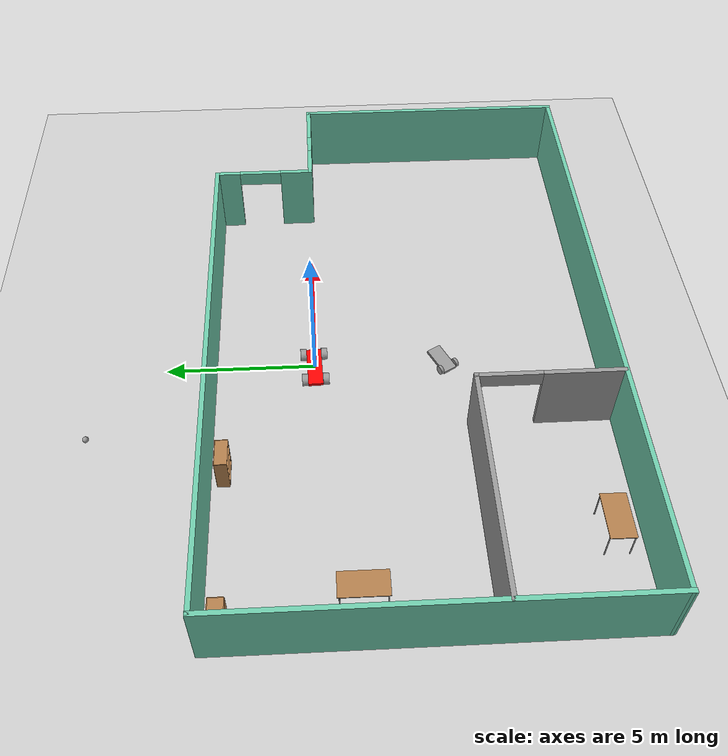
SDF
<sdf version="1.6">
 <world name="default">
  <plugin name="welcome_msg.cpp" filename="libwelcome_msg.so"/>
  <light name="sun" type="directional">
   <pose>0 0 10 0 -0 0</pose>
   <diffuse>0.8 0.8 0.8 1</diffuse>
   <specular>0.2 0.2 0.2 1</specular>
   <attenuation>
    <range>1000</range>
    <constant>0.9</constant>
    <linear>0.01</linear>
    <quadratic>0.001</quadratic>
   </attenuation>
   <direction>-0.5 0.1 -0.9</direction>
  </light>
  <model name="ground_plane">
   <static>1</static>
   <link name="link">
    <collision name="collision">
     <geometry><plane><normal>0 0 1</normal><size>100 100</size></plane></geometry>
     <surface>
      <contact><collide_bitmask>65535</collide_bitmask></contact>
      <friction><ode><mu>100</mu><mu2>50</mu2></ode></friction>
     </surface>
    </collision>
    <visual name="visual">
     <cast_shadows>0</cast_shadows>
     <geometry><plane><normal>0 0 1</normal><size>100 100</size></plane></geometry>
     <material>
      <script><uri>file://media/materials/scripts/gazebo.material</uri><name>Gazebo/Grey</name></script>
     </material>
    </visual>
   </link>
  </model>
  <gravity>0 0 -9.8</gravity>
  <magnetic_field>6e-06 2.3e-05 -4.2e-05</magnetic_field>
  <atmosphere type="adiabatic"/>
  <physics name="default_physics" default="0" type="ode">
   <max_step_size>0.001</max_step_size>
   <real_time_factor>1</real_time_factor>
   <real_time_update_rate>1000</real_time_update_rate>
  </physics>
  <scene><ambient>0.4 0.4 0.4 1</ambient><background>0.7 0.7 0.7 1</background><shadows>1</shadows></scene>
  <spherical_coordinates>
   <surface_model>EARTH_WGS84</surface_model>
   <latitude_deg>0</latitude_deg>
   <longitude_deg>0</longitude_deg>
   <elevation>0</elevation>
   <heading_deg>0</heading_deg>
  </spherical_coordinates>
  <model name="robocart_fwd">
   <link name="link_0">
    <pose>0 0 -0.036 0 -0 0</pose>
    <inertial>
     <mass>1</mass>
     <inertia>
      <ixx>0.166667</ixx>
      <ixy>0</ixy>
      <ixz>0</ixz>
      <iyy>0.166667</iyy>
      <iyz>0</iyz>
      <izz>0.166667</izz>
     </inertia>
    </inertial>
    <visual name="visual">
     <geometry><box><size>1.5 0.5 0.1</size></box></geometry>
     <material>
      <lighting>1</lighting>
      <script><uri>file://media/materials/scripts/gazebo.material</uri><name>Gazebo/Grey</name></script>
      <shader type="pixel"><normal_map>__default__</normal_map></shader>
      <ambient>1 0 0 1</ambient>
      <diffuse>1 0 0 1</diffuse>
      <specular>1 0 0 1</specular>
      <emissive>0 0 0 1</emissive>
     </material>
    </visual>
    <collision name="collision">
     <geometry><box><size>1.5 0.5 0.1</size></box></geometry>
     <surface>
      <friction>
       <ode><mu>1</mu><mu2>1</mu2><fdir1>0 0 0</fdir1><slip1>0</slip1><slip2>0</slip2></ode>
       <torsional>
        <coefficient>1</coefficient>
        <patch_radius>0</patch_radius>
        <surface_radius>0</surface_radius>
        <use_patch_radius>1</use_patch_radius>
        <ode><slip>0</slip></ode>
       </torsional>
      </friction>
      <bounce><restitution_coefficient>0</restitution_coefficient><threshold>1e+06</threshold></bounce>
      <contact>
       <collide_without_contact>0</collide_without_contact>
       <collide_without_contact_bitmask>1</collide_without_contact_bitmask>
       <collide_bitmask>1</collide_bitmask>
       <ode>
        <soft_cfm>0</soft_cfm>
        <soft_erp>0.2</soft_erp>
        <kp>1e+13</kp>
        <kd>1</kd>
        <max_vel>0.01</max_vel>
        <min_depth>0</min_depth>
       </ode>
       <bullet>
        <split_impulse>1</split_impulse>
        <split_impulse_penetration_threshold>-0.01</split_impulse_penetration_threshold>
        <soft_cfm>0</soft_cfm>
        <soft_erp>0.2</soft_erp>
        <kp>1e+13</kp>
        <kd>1</kd>
       </bullet>
      </contact>
     </surface>
    </collision>
   </link>
   <link name="link_1">
    <pose>0.55 -0.350019 0.008998 1.5707 -0 0</pose>
    <inertial>
     <mass>1</mass>
     <inertia><ixx>0.145833</ixx><ixy>0</ixy><ixz>0</ixz><iyy>0.145833</iyy><iyz>0</iyz><izz>0.125</izz></inertia>
    </inertial>
    <visual name="visual">
     <geometry><cylinder><radius>0.2</radius><length>0.2</length></cylinder></geometry>
     <material>
      <lighting>1</lighting>
      <script><uri>file://media/materials/scripts/gazebo.material</uri><name>Gazebo/Grey</name></script>
      <shader type="pixel"><normal_map>__default__</normal_map></shader>
      <ambient>0 0 0 1</ambient>
      <diffuse>0 0 0 1</diffuse>
      <specular>0.1 0.1 0.1 1</specular>
      <emissive>0 0 0 1</emissive>
     </material>
    </visual>
    <collision name="collision">
     <geometry><cylinder><radius>0.2</radius><length>0.2</length></cylinder></geometry>
     <surface>
      <friction>
       <ode><mu>1</mu><mu2>1</mu2><fdir1>0 0 0</fdir1><slip1>0</slip1><slip2>0</slip2></ode>
       <torsional>
        <coefficient>1</coefficient>
        <patch_radius>0</patch_radius>
        <surface_radius>0</surface_radius>
        <use_patch_radius>1</use_patch_radius>
        <ode><slip>0</slip></ode>
       </torsional>
      </friction>
      <bounce><restitution_coefficient>0</restitution_coefficient><threshold>1e+06</threshold></bounce>
      <contact>
       <collide_without_contact>0</collide_without_contact>
       <collide_without_contact_bitmask>1</collide_without_contact_bitmask>
       <collide_bitmask>1</collide_bitmask>
       <ode>
        <soft_cfm>0</soft_cfm>
        <soft_erp>0.2</soft_erp>
        <kp>1e+13</kp>
        <kd>1</kd>
        <max_vel>0.01</max_vel>
        <min_depth>0</min_depth>
       </ode>
       <bullet>
        <split_impulse>1</split_impulse>
        <split_impulse_penetration_threshold>-0.01</split_impulse_penetration_threshold>
        <soft_cfm>0</soft_cfm>
        <soft_erp>0.2</soft_erp>
        <kp>1e+13</kp>
        <kd>1</kd>
       </bullet>
      </contact>
     </surface>
    </collision>
   </link>
   <link name="link_1_clone">
    <pose>0.55 0.350019 0.009 1.5707 -0 0</pose>
    <inertial>
     <mass>1</mass>
     <inertia><ixx>0.145833</ixx><ixy>0</ixy><ixz>0</ixz><iyy>0.145833</iyy><iyz>0</iyz><izz>0.125</izz></inertia>
    </inertial>
    <visual name="visual">
     <geometry><cylinder><radius>0.2</radius><length>0.2</length></cylinder></geometry>
     <material>
      <lighting>1</lighting>
      <script><uri>file://media/materials/scripts/gazebo.material</uri><name>Gazebo/Grey</name></script>
      <shader type="pixel"><normal_map>__default__</normal_map></shader>
      <ambient>0 0 0 1</ambient>
      <diffuse>0 0 0 1</diffuse>
      <specular>0.1 0.1 0.1 1</specular>
      <emissive>0 0 0 1</emissive>
     </material>
    </visual>
    <collision name="collision">
     <geometry><cylinder><radius>0.2</radius><length>0.2</length></cylinder></geometry>
     <surface>
      <friction>
       <ode><mu>1</mu><mu2>1</mu2><fdir1>0 0 0</fdir1><slip1>0</slip1><slip2>0</slip2></ode>
       <torsional>
        <coefficient>1</coefficient>
        <patch_radius>0</patch_radius>
        <surface_radius>0</surface_radius>
        <use_patch_radius>1</use_patch_radius>
        <ode><slip>0</slip></ode>
       </torsional>
      </friction>
      <bounce><restitution_coefficient>0</restitution_coefficient><threshold>1e+06</threshold></bounce>
      <contact>
       <collide_without_contact>0</collide_without_contact>
       <collide_without_contact_bitmask>1</collide_without_contact_bitmask>
       <collide_bitmask>1</collide_bitmask>
       <ode>
        <soft_cfm>0</soft_cfm>
        <soft_erp>0.2</soft_erp>
        <kp>1e+13</kp>
        <kd>1</kd>
        <max_vel>0.01</max_vel>
        <min_depth>0</min_depth>
       </ode>
       <bullet>
        <split_impulse>1</split_impulse>
        <split_impulse_penetration_threshold>-0.01</split_impulse_penetration_threshold>
        <soft_cfm>0</soft_cfm>
        <soft_erp>0.2</soft_erp>
        <kp>1e+13</kp>
        <kd>1</kd>
       </bullet>
      </contact>
     </surface>
    </collision>
   </link>
   <link name="link_1_clone_0">
    <pose>-0.55 -0.350019 0.009 1.5707 -0 0</pose>
    <inertial>
     <mass>1</mass>
     <inertia><ixx>0.145833</ixx><ixy>0</ixy><ixz>0</ixz><iyy>0.145833</iyy><iyz>0</iyz><izz>0.125</izz></inertia>
    </inertial>
    <visual name="visual">
     <geometry><cylinder><radius>0.2</radius><length>0.2</length></cylinder></geometry>
     <material>
      <lighting>1</lighting>
      <script><uri>file://media/materials/scripts/gazebo.material</uri><name>Gazebo/Grey</name></script>
      <shader type="pixel"><normal_map>__default__</normal_map></shader>
      <ambient>0 0 0 1</ambient>
      <diffuse>0 0 0 1</diffuse>
      <specular>0.1 0.1 0.1 1</specular>
      <emissive>0 0 0 1</emissive>
     </material>
    </visual>
    <collision name="collision">
     <geometry><cylinder><radius>0.2</radius><length>0.2</length></cylinder></geometry>
     <surface>
      <friction>
       <ode><mu>1</mu><mu2>1</mu2><fdir1>0 0 0</fdir1><slip1>0</slip1><slip2>0</slip2></ode>
       <torsional>
        <coefficient>1</coefficient>
        <patch_radius>0</patch_radius>
        <surface_radius>0</surface_radius>
        <use_patch_radius>1</use_patch_radius>
        <ode><slip>0</slip></ode>
       </torsional>
      </friction>
      <bounce><restitution_coefficient>0</restitution_coefficient><threshold>1e+06</threshold></bounce>
      <contact>
       <collide_without_contact>0</collide_without_contact>
       <collide_without_contact_bitmask>1</collide_without_contact_bitmask>
       <collide_bitmask>1</collide_bitmask>
       <ode>
        <soft_cfm>0</soft_cfm>
        <soft_erp>0.2</soft_erp>
        <kp>1e+13</kp>
        <kd>1</kd>
        <max_vel>0.01</max_vel>
        <min_depth>0</min_depth>
       </ode>
       <bullet>
        <split_impulse>1</split_impulse>
        <split_impulse_penetration_threshold>-0.01</split_impulse_penetration_threshold>
        <soft_cfm>0</soft_cfm>
        <soft_erp>0.2</soft_erp>
        <kp>1e+13</kp>
        <kd>1</kd>
       </bullet>
      </contact>
     </surface>
    </collision>
   </link>
   <link name="link_1_clone_1">
    <pose>-0.55 0.350019 0.009 1.5707 -0 0</pose>
    <inertial>
     <mass>1</mass>
     <inertia><ixx>0.145833</ixx><ixy>0</ixy><ixz>0</ixz><iyy>0.145833</iyy><iyz>0</iyz><izz>0.125</izz></inertia>
    </inertial>
    <visual name="visual">
     <geometry><cylinder><radius>0.2</radius><length>0.2</length></cylinder></geometry>
     <material>
      <lighting>1</lighting>
      <script><uri>file://media/materials/scripts/gazebo.material</uri><name>Gazebo/Grey</name></script>
      <shader type="pixel"><normal_map>__default__</normal_map></shader>
      <ambient>0 0 0 1</ambient>
      <diffuse>0 0 0 1</diffuse>
      <specular>0.1 0.1 0.1 1</specular>
      <emissive>0 0 0 1</emissive>
     </material>
    </visual>
    <collision name="collision">
     <geometry><cylinder><radius>0.2</radius><length>0.2</length></cylinder></geometry>
     <surface>
      <friction>
       <ode><mu>1</mu><mu2>1</mu2><fdir1>0 0 0</fdir1><slip1>0</slip1><slip2>0</slip2></ode>
       <torsional>
        <coefficient>1</coefficient>
        <patch_radius>0</patch_radius>
        <surface_radius>0</surface_radius>
        <use_patch_radius>1</use_patch_radius>
        <ode><slip>0</slip></ode>
       </torsional>
      </friction>
      <bounce><restitution_coefficient>0</restitution_coefficient><threshold>1e+06</threshold></bounce>
      <contact>
       <collide_without_contact>0</collide_without_contact>
       <collide_without_contact_bitmask>1</collide_without_contact_bitmask>
       <collide_bitmask>1</collide_bitmask>
       <ode>
        <soft_cfm>0</soft_cfm>
        <soft_erp>0.2</soft_erp>
        <kp>1e+13</kp>
        <kd>1</kd>
        <max_vel>0.01</max_vel>
        <min_depth>0</min_depth>
       </ode>
       <bullet>
        <split_impulse>1</split_impulse>
        <split_impulse_penetration_threshold>-0.01</split_impulse_penetration_threshold>
        <soft_cfm>0</soft_cfm>
        <soft_erp>0.2</soft_erp>
        <kp>1e+13</kp>
        <kd>1</kd>
       </bullet>
      </contact>
     </surface>
    </collision>
   </link>
   <joint name="link_0_JOINT_0" type="revolute2">
    <parent>link_0</parent>
    <child>link_1</child>
    <axis>
     <xyz>0 0 1</xyz>
     <use_parent_model_frame>0</use_parent_model_frame>
     <limit>
      <lower>-1.79769e+308</lower>
      <upper>1.79769e+308</upper>
      <effort>-1</effort>
      <velocity>-1</velocity>
     </limit>
     <dynamics>
      <spring_reference>0</spring_reference>
      <spring_stiffness>0</spring_stiffness>
      <damping>0</damping>
     </dynamics>
    </axis>
    <axis2>
     <xyz>0 1 0</xyz>
     <use_parent_model_frame>0</use_parent_model_frame>
     <dynamics>
      <spring_reference>0</spring_reference>
      <spring_stiffness>0</spring_stiffness>
      <damping>0</damping>
     </dynamics>
     <limit>
      <lower>-1.79769e+308</lower>
      <upper>1.79769e+308</upper>
      <effort>-1</effort>
      <velocity>-1</velocity>
     </limit>
    </axis2>
    <physics>
     <ode><limit><cfm>0</cfm><erp>0.2</erp></limit><suspension><cfm>0</cfm><erp>0.2</erp></suspension></ode>
    </physics>
   </joint>
   <joint name="link_0_JOINT_1" type="revolute2">
    <parent>link_0</parent>
    <child>link_1_clone</child>
    <axis>
     <xyz>0 0 1</xyz>
     <use_parent_model_frame>0</use_parent_model_frame>
     <limit>
      <lower>-1.79769e+308</lower>
      <upper>1.79769e+308</upper>
      <effort>-1</effort>
      <velocity>-1</velocity>
     </limit>
     <dynamics>
      <spring_reference>0</spring_reference>
      <spring_stiffness>0</spring_stiffness>
      <damping>0</damping>
     </dynamics>
    </axis>
    <axis2>
     <xyz>0 1 0</xyz>
     <use_parent_model_frame>0</use_parent_model_frame>
     <dynamics>
      <spring_reference>0</spring_reference>
      <spring_stiffness>0</spring_stiffness>
      <damping>0</damping>
     </dynamics>
     <limit>
      <lower>-1.79769e+308</lower>
      <upper>1.79769e+308</upper>
      <effort>-1</effort>
      <velocity>-1</velocity>
     </limit>
    </axis2>
    <physics>
     <ode><limit><cfm>0</cfm><erp>0.2</erp></limit><suspension><cfm>0</cfm><erp>0.2</erp></suspension></ode>
    </physics>
   </joint>
   <joint name="link_0_JOINT_2" type="revolute">
    <parent>link_0</parent>
    <child>link_1_clone_0</child>
    <axis>
     <xyz>0 0 1</xyz>
     <use_parent_model_frame>0</use_parent_model_frame>
     <limit>
      <lower>-1.79769e+308</lower>
      <upper>1.79769e+308</upper>
      <effort>-1</effort>
      <velocity>-1</velocity>
     </limit>
     <dynamics>
      <spring_reference>0</spring_reference>
      <spring_stiffness>0</spring_stiffness>
      <damping>0</damping>
     </dynamics>
    </axis>
    <physics>
     <ode><limit><cfm>0</cfm><erp>0.2</erp></limit><suspension><cfm>0</cfm><erp>0.2</erp></suspension></ode>
    </physics>
   </joint>
   <joint name="link_0_JOINT_3" type="revolute">
    <parent>link_0</parent>
    <child>link_1_clone_1</child>
    <axis>
     <xyz>0 0 1</xyz>
     <use_parent_model_frame>0</use_parent_model_frame>
     <limit>
      <lower>-1.79769e+308</lower>
      <upper>1.79769e+308</upper>
      <effort>-1</effort>
      <velocity>-1</velocity>
     </limit>
     <dynamics>
      <spring_reference>0</spring_reference>
      <spring_stiffness>0</spring_stiffness>
      <damping>0</damping>
     </dynamics>
    </axis>
    <physics>
     <ode><limit><cfm>0</cfm><erp>0.2</erp></limit><suspension><cfm>0</cfm><erp>0.2</erp></suspension></ode>
    </physics>
   </joint>
   <static>0</static>
   <pose>-0.160944 0.010317 0.191001 -3e-06 1.5e-05 0.034536</pose>
  </model>
  <model name="robo_garage">
   <pose>0.48881 -3.11113 0 0 -0 0</pose>
   <link name="Wall_1">
    <collision name="Wall_1_Collision">
     <geometry><box><size>17.5 0.15 2.5</size></box></geometry>
     <pose>0 0 1.25 0 -0 0</pose>
    </collision>
    <visual name="Wall_1_Visual">
     <pose>0 0 1.25 0 -0 0</pose>
     <geometry><box><size>17.5 0.15 2.5</size></box></geometry>
     <material>
      <script><uri>file://media/materials/scripts/gazebo.material</uri><name>Gazebo/Grey</name></script>
      <ambient>0.435294 0.796078 0.67451 1</ambient>
     </material>
     <meta><layer>0</layer></meta>
    </visual>
    <pose>-1.77112 6.49406 0 0 -0 3.14159</pose>
   </link>
   <link name="Wall_12">
    <collision name="Wall_12_Collision">
     <geometry><box><size>7.5 0.15 2.5</size></box></geometry>
     <pose>0 0 1.25 0 -0 0</pose>
    </collision>
    <visual name="Wall_12_Visual">
     <pose>0 0 1.25 0 -0 0</pose>
     <geometry><box><size>7.5 0.15 2.5</size></box></geometry>
     <material>
      <script><uri>file://media/materials/scripts/gazebo.material</uri><name>Gazebo/Grey</name></script>
      <ambient>1 1 1 1</ambient>
     </material>
     <meta><layer>0</layer></meta>
    </visual>
    <pose>-6.81138 -1.83394 0 0 -0 0</pose>
   </link>
   <link name="Wall_13">
    <pose>-3.13638 -4.13394 0 0 0 -1.5708</pose>
    <visual name="Wall_13_Visual_0">
     <pose>-2.30058 0 1.25 0 -0 0</pose>
     <geometry><box><size>0.14883 0.15 2.5</size></box></geometry>
     <material>
      <script><uri>file://media/materials/scripts/gazebo.material</uri><name>Gazebo/Grey</name></script>
      <ambient>1 1 1 1</ambient>
     </material>
     <meta><layer>0</layer></meta>
    </visual>
    <collision name="Wall_13_Collision_0">
     <geometry><box><size>0.14883 0.15 2.5</size></box></geometry>
     <pose>-2.30058 0 1.25 0 -0 0</pose>
    </collision>
    <visual name="Wall_13_Visual_1">
     <pose>1.07441 0 1.25 0 -0 0</pose>
     <geometry><box><size>2.60117 0.15 2.5</size></box></geometry>
     <material>
      <script><uri>file://media/materials/scripts/gazebo.material</uri><name>Gazebo/Grey</name></script>
      <ambient>1 1 1 1</ambient>
     </material>
     <meta><layer>0</layer></meta>
    </visual>
    <collision name="Wall_13_Collision_1">
     <geometry><box><size>2.60117 0.15 2.5</size></box></geometry>
     <pose>1.07441 0 1.25 0 -0 0</pose>
    </collision>
    <visual name="Wall_13_Visual_2">
     <pose>-1.22617 0 2.25 0 -0 0</pose>
     <geometry><box><size>2 0.15 0.5</size></box></geometry>
     <material>
      <script><uri>file://media/materials/scripts/gazebo.material</uri><name>Gazebo/Grey</name></script>
      <ambient>1 1 1 1</ambient>
     </material>
     <meta><layer>0</layer></meta>
    </visual>
    <collision name="Wall_13_Collision_2">
     <geometry><box><size>2 0.15 0.5</size></box></geometry>
     <pose>-1.22617 0 2.25 0 -0 0</pose>
    </collision>
   </link>
   <link name="Wall_3">
    <pose>6.90388 4.76807 0 0 0 -1.5708</pose>
    <visual name="Wall_3_Visual_0">
     <pose>-1.3356 0 1.25 0 -0 0</pose>
     <geometry><box><size>0.88999 0.15 2.5</size></box></geometry>
     <material>
      <script><uri>file://media/materials/scripts/gazebo.material</uri><name>Gazebo/Grey</name></script>
      <ambient>0.435294 0.796078 0.67451 1</ambient>
     </material>
     <meta><layer>0</layer></meta>
    </visual>
    <collision name="Wall_3_Collision_0">
     <geometry><box><size>0.88999 0.15 2.5</size></box></geometry>
     <pose>-1.3356 0 1.25 0 -0 0</pose>
    </collision>
    <visual name="Wall_3_Visual_1">
     <pose>1.195 0 1.25 0 -0 0</pose>
     <geometry><box><size>1.17119 0.15 2.5</size></box></geometry>
     <material>
      <script><uri>file://media/materials/scripts/gazebo.material</uri><name>Gazebo/Grey</name></script>
      <ambient>0.435294 0.796078 0.67451 1</ambient>
     </material>
     <meta><layer>0</layer></meta>
    </visual>
    <collision name="Wall_3_Collision_1">
     <geometry><box><size>1.17119 0.15 2.5</size></box></geometry>
     <pose>1.195 0 1.25 0 -0 0</pose>
    </collision>
    <visual name="Wall_3_Visual_2">
     <pose>-0.1406 0 2.25 0 -0 0</pose>
     <geometry><box><size>1.5 0.15 0.5</size></box></geometry>
     <material>
      <script><uri>file://media/materials/scripts/gazebo.material</uri><name>Gazebo/Grey</name></script>
      <ambient>0.435294 0.796078 0.67451 1</ambient>
     </material>
     <meta><layer>0</layer></meta>
    </visual>
    <collision name="Wall_3_Collision_2">
     <geometry><box><size>1.5 0.15 0.5</size></box></geometry>
     <pose>-0.1406 0 2.25 0 -0 0</pose>
    </collision>
   </link>
   <link name="Wall_4">
    <pose>8.70403 3.06231 0 0 0 -9.9e-05</pose>
    <visual name="Wall_4_Visual_0">
     <pose>-1.21912 0 1.25 0 -0 0</pose>
     <geometry><box><size>1.31176 0.15 2.5</size></box></geometry>
     <material>
      <script><uri>file://media/materials/scripts/gazebo.material</uri><name>Gazebo/Grey</name></script>
      <ambient>0.435294 0.796078 0.67451 1</ambient>
     </material>
     <meta><layer>0</layer></meta>
    </visual>
    <collision name="Wall_4_Collision_0">
     <geometry><box><size>1.31176 0.15 2.5</size></box></geometry>
     <pose>-1.21912 0 1.25 0 -0 0</pose>
    </collision>
    <visual name="Wall_4_Visual_1">
     <pose>0.655882 0 0.25 0 -0 0</pose>
     <geometry><box><size>2.43824 0.15 0.5</size></box></geometry>
     <material>
      <script><uri>file://media/materials/scripts/gazebo.material</uri><name>Gazebo/Grey</name></script>
      <ambient>0.435294 0.796078 0.67451 1</ambient>
     </material>
     <meta><layer>0</layer></meta>
    </visual>
    <collision name="Wall_4_Collision_1">
     <geometry><box><size>2.43824 0.15 0.5</size></box></geometry>
     <pose>0.655882 0 0.25 0 -0 0</pose>
    </collision>
    <visual name="Wall_4_Visual_2">
     <pose>1.05588 0 1.5 0 -0 0</pose>
     <geometry><box><size>1.63824 0.15 2</size></box></geometry>
     <material>
      <script><uri>file://media/materials/scripts/gazebo.material</uri><name>Gazebo/Grey</name></script>
      <ambient>0.435294 0.796078 0.67451 1</ambient>
     </material>
     <meta><layer>0</layer></meta>
    </visual>
    <collision name="Wall_4_Collision_2">
     <geometry><box><size>1.63824 0.15 2</size></box></geometry>
     <pose>1.05588 0 1.5 0 -0 0</pose>
    </collision>
    <visual name="Wall_4_Visual_3">
     <pose>-0.163237 0 1.9 0 -0 0</pose>
     <geometry><box><size>0.8 0.15 1.2</size></box></geometry>
     <material>
      <script><uri>file://media/materials/scripts/gazebo.material</uri><name>Gazebo/Grey</name></script>
      <ambient>0.435294 0.796078 0.67451 1</ambient>
     </material>
     <meta><layer>0</layer></meta>
    </visual>
    <collision name="Wall_4_Collision_3">
     <geometry><box><size>0.8 0.15 1.2</size></box></geometry>
     <pose>-0.163237 0 1.9 0 -0 0</pose>
    </collision>
   </link>
   <link name="Wall_5">
    <collision name="Wall_5_Collision">
     <geometry><box><size>9.71424 0.15 2.5</size></box></geometry>
     <pose>0 0 1.25 0 -0 0</pose>
    </collision>
    <visual name="Wall_5_Visual">
     <pose>0 0 1.25 0 -0 0</pose>
     <geometry><box><size>9.71424 0.15 2.5</size></box></geometry>
     <material>
      <script><uri>file://media/materials/scripts/gazebo.material</uri><name>Gazebo/Grey</name></script>
      <ambient>0.435294 0.796078 0.67451 1</ambient>
     </material>
     <meta><layer>0</layer></meta>
    </visual>
    <pose>10.4965 -1.71998 0 0 0 -1.57241</pose>
   </link>
   <link name="Wall_6">
    <collision name="Wall_6_Collision">
     <geometry><box><size>21.143 0.15 2.5</size></box></geometry>
     <pose>0 0 1.25 0 -0 0</pose>
    </collision>
    <visual name="Wall_6_Visual">
     <pose>0 0 1.25 0 -0 0</pose>
     <geometry><box><size>21.143 0.15 2.5</size></box></geometry>
     <material>
      <script><uri>file://media/materials/scripts/gazebo.material</uri><name>Gazebo/Grey</name></script>
      <ambient>0.435294 0.796078 0.67451 1</ambient>
     </material>
     <meta><layer>0</layer></meta>
    </visual>
    <pose>-0.007726 -6.48668 0 0 -0 3.14159</pose>
   </link>
   <link name="Wall_7">
    <collision name="Wall_7_Collision">
     <geometry><box><size>13.1542 0.15 2.5</size></box></geometry>
     <pose>0 0 1.25 0 -0 0</pose>
    </collision>
    <visual name="Wall_7_Visual">
     <pose>0 0 1.25 0 -0 0</pose>
     <geometry><box><size>13.1542 0.15 2.5</size></box></geometry>
     <material>
      <script><uri>file://media/materials/scripts/gazebo.material</uri><name>Gazebo/Grey</name></script>
      <ambient>0.435294 0.796078 0.67451 1</ambient>
     </material>
     <meta><layer>0</layer></meta>
    </visual>
    <pose>-10.4965 1.6e-05 0 0 -0 1.56961</pose>
   </link>
   <static>1</static>
  </model>
  <model name="table_0">
   <static>1</static>
   <link name="link">
    <collision name="surface">
     <pose>0 0 1 0 -0 0</pose>
     <geometry><box><size>1.5 0.8 0.03</size></box></geometry>
     <surface><friction><ode><mu>0.6</mu><mu2>0.6</mu2></ode></friction></surface>
    </collision>
    <visual name="visual1">
     <pose>0 0 1 0 -0 0</pose>
     <geometry><box><size>1.5 0.8 0.03</size></box></geometry>
     <material>
      <script><uri>file://media/materials/scripts/gazebo.material</uri><name>Gazebo/Wood</name></script>
     </material>
    </visual>
    <collision name="front_left_leg">
     <pose>0.68 0.38 0.5 0 -0 0</pose>
     <geometry><cylinder><radius>0.02</radius><length>1</length></cylinder></geometry>
    </collision>
    <visual name="front_left_leg">
     <pose>0.68 0.38 0.5 0 -0 0</pose>
     <geometry><cylinder><radius>0.02</radius><length>1</length></cylinder></geometry>
     <material>
      <script><uri>file://media/materials/scripts/gazebo.material</uri><name>Gazebo/Grey</name></script>
     </material>
    </visual>
    <collision name="front_right_leg">
     <pose>0.68 -0.38 0.5 0 -0 0</pose>
     <geometry><cylinder><radius>0.02</radius><length>1</length></cylinder></geometry>
    </collision>
    <visual name="front_right_leg">
     <pose>0.68 -0.38 0.5 0 -0 0</pose>
     <geometry><cylinder><radius>0.02</radius><length>1</length></cylinder></geometry>
     <material>
      <script><uri>file://media/materials/scripts/gazebo.material</uri><name>Gazebo/Grey</name></script>
     </material>
    </visual>
    <collision name="back_right_leg">
     <pose>-0.68 -0.38 0.5 0 -0 0</pose>
     <geometry><cylinder><radius>0.02</radius><length>1</length></cylinder></geometry>
    </collision>
    <visual name="back_right_leg">
     <pose>-0.68 -0.38 0.5 0 -0 0</pose>
     <geometry><cylinder><radius>0.02</radius><length>1</length></cylinder></geometry>
     <material>
      <script><uri>file://media/materials/scripts/gazebo.material</uri><name>Gazebo/Grey</name></script>
     </material>
    </visual>
    <collision name="back_left_leg">
     <pose>-0.68 0.38 0.5 0 -0 0</pose>
     <geometry><cylinder><radius>0.02</radius><length>1</length></cylinder></geometry>
    </collision>
    <visual name="back_left_leg">
     <pose>-0.68 0.38 0.5 0 -0 0</pose>
     <geometry><cylinder><radius>0.02</radius><length>1</length></cylinder></geometry>
     <material>
      <script><uri>file://media/materials/scripts/gazebo.material</uri><name>Gazebo/Grey</name></script>
     </material>
    </visual>
   </link>
   <pose>-6.8619 -8.64786 0 0 -0 0</pose>
  </model>
  <model name="cabinet">
   <static>1</static>
   <link name="cabinet_bottom_plate">
    <inertial>
     <pose>0 0 -1 0 -0 0</pose>
     <inertia><ixx>2.05</ixx><ixy>0</ixy><ixz>0</ixz><iyy>2.05</iyy><iyz>0</iyz><izz>2.05</izz></inertia>
     <mass>25</mass>
    </inertial>
    <collision name="cabinet_bottom_plate_geom">
     <pose>0 0 0.01 0 -0 0</pose>
     <geometry><box><size>0.45 0.45 0.02</size></box></geometry>
    </collision>
    <visual name="cabinet_bottom_plate_geom_visual">
     <pose>0 0 0.01 0 -0 0</pose>
     <geometry><box><size>0.45 0.45 0.02</size></box></geometry>
     <material>
      <script><uri>file://media/materials/scripts/gazebo.material</uri><name>Gazebo/Wood</name></script>
     </material>
    </visual>
    <collision name="cabinet_bottom_plate_geom_cabinet_back_plate">
     <pose>0.235 0 0.51 0 -0 0</pose>
     <geometry><box><size>0.02 0.45 1.02</size></box></geometry>
    </collision>
    <visual name="cabinet_bottom_plate_geom_cabinet_back_plate_visual">
     <pose>0.235 0 0.51 0 -0 0</pose>
     <geometry><box><size>0.02 0.45 1.02</size></box></geometry>
     <material>
      <script><uri>file://media/materials/scripts/gazebo.material</uri><name>Gazebo/Wood</name></script>
     </material>
    </visual>
    <collision name="cabinet_bottom_plate_geom_cabinet_left_plate">
     <pose>0 0.235 0.51 0 -0 0</pose>
     <geometry><box><size>0.45 0.02 1.02</size></box></geometry>
    </collision>
    <visual name="cabinet_bottom_plate_geom_cabinet_left_plate_visual">
     <pose>0 0.235 0.51 0 -0 0</pose>
     <geometry><box><size>0.45 0.02 1.02</size></box></geometry>
     <material>
      <script><uri>file://media/materials/scripts/gazebo.material</uri><name>Gazebo/Wood</name></script>
     </material>
    </visual>
    <collision name="cabinet_bottom_plate_geom_cabinet_middle_plate">
     <pose>0 0 0.51 0 -0 0</pose>
     <geometry><box><size>0.45 0.45 0.02</size></box></geometry>
    </collision>
    <visual name="cabinet_bottom_plate_geom_cabinet_middle_plate_visual">
     <pose>0 0 0.51 0 -0 0</pose>
     <geometry><box><size>0.45 0.45 0.02</size></box></geometry>
     <material>
      <script><uri>file://media/materials/scripts/gazebo.material</uri><name>Gazebo/Wood</name></script>
     </material>
    </visual>
    <collision name="cabinet_bottom_plate_geom_cabinet_right_plate">
     <pose>0 -0.235 0.51 0 -0 0</pose>
     <geometry><box><size>0.45 0.02 1.02</size></box></geometry>
    </collision>
    <visual name="cabinet_bottom_plate_geom_cabinet_right_plate_visual">
     <pose>0 -0.235 0.51 0 -0 0</pose>
     <geometry><box><size>0.45 0.02 1.02</size></box></geometry>
     <material>
      <script><uri>file://media/materials/scripts/gazebo.material</uri><name>Gazebo/Wood</name></script>
     </material>
    </visual>
    <collision name="cabinet_bottom_plate_geom_cabinet_top_plate">
     <pose>0 0 1.01 0 -0 0</pose>
     <geometry><box><size>0.45 0.45 0.02</size></box></geometry>
    </collision>
    <visual name="cabinet_bottom_plate_geom_cabinet_top_plate_visual">
     <pose>0 0 1.01 0 -0 0</pose>
     <geometry><box><size>0.45 0.45 0.02</size></box></geometry>
     <material>
      <script><uri>file://media/materials/scripts/gazebo.material</uri><name>Gazebo/Wood</name></script>
     </material>
    </visual>
   </link>
   <pose>-9.07572 2.87343 0 0 -0 0</pose>
  </model>
  <model name="bookshelf">
   <static>1</static>
   <link name="link">
    <inertial><mass>1</mass></inertial>
    <collision name="back">
     <pose>0 0.005 0.6 0 -0 0</pose>
     <geometry><box><size>0.9 0.01 1.2</size></box></geometry>
    </collision>
    <visual name="visual1">
     <pose>0 0.005 0.6 0 -0 0</pose>
     <geometry><box><size>0.9 0.01 1.2</size></box></geometry>
     <material>
      <script><uri>file://media/materials/scripts/gazebo.material</uri><name>Gazebo/Wood</name></script>
     </material>
    </visual>
    <collision name="left_side">
     <pose>0.45 -0.195 0.6 0 -0 0</pose>
     <geometry><box><size>0.02 0.4 1.2</size></box></geometry>
    </collision>
    <visual name="visual2">
     <pose>0.45 -0.195 0.6 0 -0 0</pose>
     <geometry><box><size>0.02 0.4 1.2</size></box></geometry>
     <material>
      <script><uri>file://media/materials/scripts/gazebo.material</uri><name>Gazebo/Wood</name></script>
     </material>
    </visual>
    <collision name="right_side">
     <pose>-0.45 -0.195 0.6 0 -0 0</pose>
     <geometry><box><size>0.02 0.4 1.2</size></box></geometry>
    </collision>
    <visual name="visual3">
     <pose>-0.45 -0.195 0.6 0 -0 0</pose>
     <geometry><box><size>0.02 0.4 1.2</size></box></geometry>
     <material>
      <script><uri>file://media/materials/scripts/gazebo.material</uri><name>Gazebo/Wood</name></script>
     </material>
    </visual>
    <collision name="bottom">
     <pose>0 -0.195 0.03 0 -0 0</pose>
     <geometry><box><size>0.88 0.4 0.06</size></box></geometry>
    </collision>
    <visual name="visual4">
     <pose>0 -0.195 0.03 0 -0 0</pose>
     <geometry><box><size>0.88 0.4 0.06</size></box></geometry>
     <material>
      <script><uri>file://media/materials/scripts/gazebo.material</uri><name>Gazebo/Wood</name></script>
     </material>
    </visual>
    <collision name="top">
     <pose>0 -0.195 1.19 0 -0 0</pose>
     <geometry><box><size>0.88 0.4 0.02</size></box></geometry>
    </collision>
    <visual name="visual5">
     <pose>0 -0.195 1.19 0 -0 0</pose>
     <geometry><box><size>0.88 0.4 0.02</size></box></geometry>
     <material>
      <script><uri>file://media/materials/scripts/gazebo.material</uri><name>Gazebo/Wood</name></script>
     </material>
    </visual>
    <collision name="low_shelf">
     <pose>0 -0.195 0.43 0 -0 0</pose>
     <geometry><box><size>0.88 0.4 0.02</size></box></geometry>
    </collision>
    <visual name="visual6">
     <pose>0 -0.195 0.43 0 -0 0</pose>
     <geometry><box><size>0.88 0.4 0.02</size></box></geometry>
     <material>
      <script><uri>file://media/materials/scripts/gazebo.material</uri><name>Gazebo/Wood</name></script>
     </material>
    </visual>
    <collision name="high_shelf">
     <pose>0 -0.195 0.8 0 -0 0</pose>
     <geometry><box><size>0.88 0.4 0.02</size></box></geometry>
    </collision>
    <visual name="visual7">
     <pose>0 -0.195 0.8 0 -0 0</pose>
     <geometry><box><size>0.88 0.4 0.02</size></box></geometry>
     <material>
      <script><uri>file://media/materials/scripts/gazebo.material</uri><name>Gazebo/Wood</name></script>
     </material>
    </visual>
   </link>
   <pose>-4.20768 3.10351 0 0 -0 0</pose>
  </model>
  <model name="table">
   <static>1</static>
   <link name="link">
    <collision name="surface">
     <pose>0 0 1 0 -0 0</pose>
     <geometry><box><size>1.5 0.8 0.03</size></box></geometry>
     <surface><friction><ode><mu>0.6</mu><mu2>0.6</mu2></ode></friction></surface>
    </collision>
    <visual name="visual1">
     <pose>0 0 1 0 -0 0</pose>
     <geometry><box><size>1.5 0.8 0.03</size></box></geometry>
     <material>
      <script><uri>file://media/materials/scripts/gazebo.material</uri><name>Gazebo/Wood</name></script>
     </material>
    </visual>
    <collision name="front_left_leg">
     <pose>0.68 0.38 0.5 0 -0 0</pose>
     <geometry><cylinder><radius>0.02</radius><length>1</length></cylinder></geometry>
    </collision>
    <visual name="front_left_leg">
     <pose>0.68 0.38 0.5 0 -0 0</pose>
     <geometry><cylinder><radius>0.02</radius><length>1</length></cylinder></geometry>
     <material>
      <script><uri>file://media/materials/scripts/gazebo.material</uri><name>Gazebo/Grey</name></script>
     </material>
    </visual>
    <collision name="front_right_leg">
     <pose>0.68 -0.38 0.5 0 -0 0</pose>
     <geometry><cylinder><radius>0.02</radius><length>1</length></cylinder></geometry>
    </collision>
    <visual name="front_right_leg">
     <pose>0.68 -0.38 0.5 0 -0 0</pose>
     <geometry><cylinder><radius>0.02</radius><length>1</length></cylinder></geometry>
     <material>
      <script><uri>file://media/materials/scripts/gazebo.material</uri><name>Gazebo/Grey</name></script>
     </material>
    </visual>
    <collision name="back_right_leg">
     <pose>-0.68 -0.38 0.5 0 -0 0</pose>
     <geometry><cylinder><radius>0.02</radius><length>1</length></cylinder></geometry>
    </collision>
    <visual name="back_right_leg">
     <pose>-0.68 -0.38 0.5 0 -0 0</pose>
     <geometry><cylinder><radius>0.02</radius><length>1</length></cylinder></geometry>
     <material>
      <script><uri>file://media/materials/scripts/gazebo.material</uri><name>Gazebo/Grey</name></script>
     </material>
    </visual>
    <collision name="back_left_leg">
     <pose>-0.68 0.38 0.5 0 -0 0</pose>
     <geometry><cylinder><radius>0.02</radius><length>1</length></cylinder></geometry>
    </collision>
    <visual name="back_left_leg">
     <pose>-0.68 0.38 0.5 0 -0 0</pose>
     <geometry><cylinder><radius>0.02</radius><length>1</length></cylinder></geometry>
     <material>
      <script><uri>file://media/materials/scripts/gazebo.material</uri><name>Gazebo/Grey</name></script>
     </material>
    </visual>
   </link>
   <pose>-8.62904 -1.17414 0 0 -0 1.56812</pose>
  </model>
  <model name="segway_cart">
   <link name="link_0">
    <pose>0.085 0.004163 0.002504 0 -0 0</pose>
    <inertial>
     <mass>1</mass>
     <inertia>
      <ixx>0.166667</ixx>
      <ixy>0</ixy>
      <ixz>0</ixz>
      <iyy>0.166667</iyy>
      <iyz>0</iyz>
      <izz>0.166667</izz>
     </inertia>
    </inertial>
    <visual name="visual">
     <geometry><box><size>1 0.5 0.1</size></box></geometry>
     <material>
      <lighting>1</lighting>
      <script><uri>file://media/materials/scripts/gazebo.material</uri><name>Gazebo/Grey</name></script>
      <shader type="pixel"><normal_map>__default__</normal_map></shader>
      <ambient>0 0 0 1</ambient>
      <diffuse>0 0 0 1</diffuse>
      <specular>0 0 0 1</specular>
      <emissive>0 0 0 1</emissive>
     </material>
    </visual>
    <collision name="collision">
     <geometry><box><size>1 0.5 0.1</size></box></geometry>
     <surface>
      <friction>
       <ode><mu>1</mu><mu2>1</mu2><fdir1>0 0 0</fdir1><slip1>0</slip1><slip2>0</slip2></ode>
       <torsional>
        <coefficient>1</coefficient>
        <patch_radius>0</patch_radius>
        <surface_radius>0</surface_radius>
        <use_patch_radius>1</use_patch_radius>
        <ode><slip>0</slip></ode>
       </torsional>
      </friction>
      <bounce><restitution_coefficient>0</restitution_coefficient><threshold>1e+06</threshold></bounce>
      <contact>
       <collide_without_contact>0</collide_without_contact>
       <collide_without_contact_bitmask>1</collide_without_contact_bitmask>
       <collide_bitmask>1</collide_bitmask>
       <ode>
        <soft_cfm>0</soft_cfm>
        <soft_erp>0.2</soft_erp>
        <kp>1e+13</kp>
        <kd>1</kd>
        <max_vel>0.01</max_vel>
        <min_depth>0</min_depth>
       </ode>
       <bullet>
        <split_impulse>1</split_impulse>
        <split_impulse_penetration_threshold>-0.01</split_impulse_penetration_threshold>
        <soft_cfm>0</soft_cfm>
        <soft_erp>0.2</soft_erp>
        <kp>1e+13</kp>
        <kd>1</kd>
       </bullet>
      </contact>
     </surface>
    </collision>
   </link>
   <link name="link_1">
    <pose>0.445 -0.015837 -0.097496 0 -0 0</pose>
    <inertial>
     <mass>1</mass>
     <inertia><ixx>0.1</ixx><ixy>0</ixy><ixz>0</ixz><iyy>0.1</iyy><iyz>0</iyz><izz>0.1</izz></inertia>
    </inertial>
    <visual name="visual">
     <geometry><sphere><radius>0.1</radius></sphere></geometry>
     <material>
      <lighting>1</lighting>
      <script><uri>file://media/materials/scripts/gazebo.material</uri><name>Gazebo/Grey</name></script>
      <shader type="pixel"><normal_map>__default__</normal_map></shader>
      <ambient>0.3 0.3 0.3 1</ambient>
      <diffuse>0.7 0.7 0.7 1</diffuse>
      <specular>0.01 0.01 0.01 1</specular>
      <emissive>0 0 0 1</emissive>
     </material>
    </visual>
    <collision name="collision">
     <geometry><sphere><radius>0.1</radius></sphere></geometry>
     <surface>
      <friction>
       <ode><mu>1</mu><mu2>1</mu2><fdir1>0 0 0</fdir1><slip1>0</slip1><slip2>0</slip2></ode>
       <torsional>
        <coefficient>1</coefficient>
        <patch_radius>0</patch_radius>
        <surface_radius>0</surface_radius>
        <use_patch_radius>1</use_patch_radius>
        <ode><slip>0</slip></ode>
       </torsional>
      </friction>
      <bounce><restitution_coefficient>0</restitution_coefficient><threshold>1e+06</threshold></bounce>
      <contact>
       <collide_without_contact>0</collide_without_contact>
       <collide_without_contact_bitmask>1</collide_without_contact_bitmask>
       <collide_bitmask>1</collide_bitmask>
       <ode>
        <soft_cfm>0</soft_cfm>
        <soft_erp>0.2</soft_erp>
        <kp>1e+13</kp>
        <kd>1</kd>
        <max_vel>0.01</max_vel>
        <min_depth>0</min_depth>
       </ode>
       <bullet>
        <split_impulse>1</split_impulse>
        <split_impulse_penetration_threshold>-0.01</split_impulse_penetration_threshold>
        <soft_cfm>0</soft_cfm>
        <soft_erp>0.2</soft_erp>
        <kp>1e+13</kp>
        <kd>1</kd>
       </bullet>
      </contact>
     </surface>
    </collision>
   </link>
   <link name="link_3">
    <pose>-0.265 -0.292501 0.047496 1.5707 -0 0</pose>
    <inertial>
     <mass>1</mass>
     <inertia><ixx>0.145833</ixx><ixy>0</ixy><ixz>0</ixz><iyy>0.145833</iyy><iyz>0</iyz><izz>0.125</izz></inertia>
    </inertial>
    <visual name="visual">
     <geometry><cylinder><radius>0.15</radius><length>0.1</length></cylinder></geometry>
     <material>
      <lighting>1</lighting>
      <script><uri>file://media/materials/scripts/gazebo.material</uri><name>Gazebo/Grey</name></script>
      <shader type="pixel"><normal_map>__default__</normal_map></shader>
      <ambient>0.3 0.3 0.3 1</ambient>
      <diffuse>0.7 0.7 0.7 1</diffuse>
      <specular>0.01 0.01 0.01 1</specular>
      <emissive>0 0 0 1</emissive>
     </material>
    </visual>
    <collision name="collision">
     <geometry><cylinder><radius>0.15</radius><length>0.1</length></cylinder></geometry>
     <surface>
      <friction>
       <ode><mu>1</mu><mu2>1</mu2><fdir1>0 0 0</fdir1><slip1>0</slip1><slip2>0</slip2></ode>
       <torsional>
        <coefficient>1</coefficient>
        <patch_radius>0</patch_radius>
        <surface_radius>0</surface_radius>
        <use_patch_radius>1</use_patch_radius>
        <ode><slip>0</slip></ode>
       </torsional>
      </friction>
      <bounce><restitution_coefficient>0</restitution_coefficient><threshold>1e+06</threshold></bounce>
      <contact>
       <collide_without_contact>0</collide_without_contact>
       <collide_without_contact_bitmask>1</collide_without_contact_bitmask>
       <collide_bitmask>1</collide_bitmask>
       <ode>
        <soft_cfm>0</soft_cfm>
        <soft_erp>0.2</soft_erp>
        <kp>1e+13</kp>
        <kd>1</kd>
        <max_vel>0.01</max_vel>
        <min_depth>0</min_depth>
       </ode>
       <bullet>
        <split_impulse>1</split_impulse>
        <split_impulse_penetration_threshold>-0.01</split_impulse_penetration_threshold>
        <soft_cfm>0</soft_cfm>
        <soft_erp>0.2</soft_erp>
        <kp>1e+13</kp>
        <kd>1</kd>
       </bullet>
      </contact>
     </surface>
    </collision>
   </link>
   <link name="link_3_clone">
    <pose>-0.265 0.304177 0.047504 1.5707 -0 0</pose>
    <inertial>
     <mass>1</mass>
     <inertia><ixx>0.145833</ixx><ixy>0</ixy><ixz>0</ixz><iyy>0.145833</iyy><iyz>0</iyz><izz>0.125</izz></inertia>
    </inertial>
    <visual name="visual">
     <geometry><cylinder><radius>0.15</radius><length>0.1</length></cylinder></geometry>
     <material>
      <lighting>1</lighting>
      <script><uri>file://media/materials/scripts/gazebo.material</uri><name>Gazebo/Grey</name></script>
      <shader type="pixel"><normal_map>__default__</normal_map></shader>
      <ambient>0.3 0.3 0.3 1</ambient>
      <diffuse>0.7 0.7 0.7 1</diffuse>
      <specular>0.01 0.01 0.01 1</specular>
      <emissive>0 0 0 1</emissive>
     </material>
    </visual>
    <collision name="collision">
     <geometry><cylinder><radius>0.15</radius><length>0.1</length></cylinder></geometry>
     <surface>
      <friction>
       <ode><mu>1</mu><mu2>1</mu2><fdir1>0 0 0</fdir1><slip1>0</slip1><slip2>0</slip2></ode>
       <torsional>
        <coefficient>1</coefficient>
        <patch_radius>0</patch_radius>
        <surface_radius>0</surface_radius>
        <use_patch_radius>1</use_patch_radius>
        <ode><slip>0</slip></ode>
       </torsional>
      </friction>
      <bounce><restitution_coefficient>0</restitution_coefficient><threshold>1e+06</threshold></bounce>
      <contact>
       <collide_without_contact>0</collide_without_contact>
       <collide_without_contact_bitmask>1</collide_without_contact_bitmask>
       <collide_bitmask>1</collide_bitmask>
       <ode>
        <soft_cfm>0</soft_cfm>
        <soft_erp>0.2</soft_erp>
        <kp>1e+13</kp>
        <kd>1</kd>
        <max_vel>0.01</max_vel>
        <min_depth>0</min_depth>
       </ode>
       <bullet>
        <split_impulse>1</split_impulse>
        <split_impulse_penetration_threshold>-0.01</split_impulse_penetration_threshold>
        <soft_cfm>0</soft_cfm>
        <soft_erp>0.2</soft_erp>
        <kp>1e+13</kp>
        <kd>1</kd>
       </bullet>
      </contact>
     </surface>
    </collision>
   </link>
   <joint name="link_0_JOINT_0" type="ball">
    <parent>link_0</parent>
    <child>link_1</child>
    <physics>
     <ode><limit><cfm>0</cfm><erp>0.2</erp></limit><suspension><cfm>0</cfm><erp>0.2</erp></suspension></ode>
    </physics>
   </joint>
   <joint name="link_0_JOINT_3" type="revolute">
    <parent>link_0</parent>
    <child>link_3</child>
    <axis>
     <xyz>0 0 1</xyz>
     <use_parent_model_frame>0</use_parent_model_frame>
     <limit>
      <lower>-1.79769e+308</lower>
      <upper>1.79769e+308</upper>
      <effort>-1</effort>
      <velocity>-1</velocity>
     </limit>
     <dynamics>
      <spring_reference>0</spring_reference>
      <spring_stiffness>0</spring_stiffness>
      <damping>0</damping>
     </dynamics>
    </axis>
    <physics>
     <ode><limit><cfm>0</cfm><erp>0.2</erp></limit><suspension><cfm>0</cfm><erp>0.2</erp></suspension></ode>
    </physics>
   </joint>
   <joint name="link_0_JOINT_4" type="revolute">
    <parent>link_0</parent>
    <child>link_3_clone</child>
    <axis>
     <xyz>0 0 1</xyz>
     <use_parent_model_frame>0</use_parent_model_frame>
     <limit>
      <lower>-1.79769e+308</lower>
      <upper>1.79769e+308</upper>
      <effort>-1</effort>
      <velocity>-1</velocity>
     </limit>
     <dynamics>
      <spring_reference>0</spring_reference>
      <spring_stiffness>0</spring_stiffness>
      <damping>0</damping>
     </dynamics>
    </axis>
    <physics>
     <ode><limit><cfm>0</cfm><erp>0.2</erp></limit><suspension><cfm>0</cfm><erp>0.2</erp></suspension></ode>
    </physics>
   </joint>
   <static>0</static>
   <pose>-0.092398 -4.35727 0.137902 -1.3e-05 -0.132388 0.525003</pose>
  </model>
  <model name="my_ball">
   <link name="link">
    <inertial>
     <mass>1</mass>
     <inertia><ixx>0.1</ixx><ixy>0</ixy><ixz>0</ixz><iyy>0.1</iyy><iyz>0</iyz><izz>0.1</izz></inertia>
    </inertial>
    <visual name="visual">
     <geometry><sphere><radius>0.1</radius></sphere></geometry>
     <material>
      <script><name>Gazebo/Grey</name><uri>file://media/materials/scripts/gazebo.material</uri></script>
      <shader type="pixel"><normal_map>__default__</normal_map></shader>
      <ambient>1 1 1 1</ambient>
      <diffuse>1 1 1 1</diffuse>
      <specular>1 1 1 1</specular>
      <emissive>1 1 1 1</emissive>
     </material>
    </visual>
    <collision name="collision">
     <geometry><sphere><radius>0.1</radius></sphere></geometry>
     <surface>
      <friction>
       <ode><mu>1</mu><mu2>1</mu2><fdir1>0 0 0</fdir1><slip1>0</slip1><slip2>0</slip2></ode>
       <torsional>
        <coefficient>1</coefficient>
        <patch_radius>0</patch_radius>
        <surface_radius>0</surface_radius>
        <use_patch_radius>1</use_patch_radius>
        <ode><slip>0</slip></ode>
       </torsional>
      </friction>
      <bounce><restitution_coefficient>0</restitution_coefficient><threshold>1e+06</threshold></bounce>
      <contact>
       <collide_without_contact>0</collide_without_contact>
       <collide_without_contact_bitmask>1</collide_without_contact_bitmask>
       <collide_bitmask>1</collide_bitmask>
       <ode>
        <soft_cfm>0</soft_cfm>
        <soft_erp>0.2</soft_erp>
        <kp>1e+13</kp>
        <kd>1</kd>
        <max_vel>0.01</max_vel>
        <min_depth>0</min_depth>
       </ode>
       <bullet>
        <split_impulse>1</split_impulse>
        <split_impulse_penetration_threshold>-0.01</split_impulse_penetration_threshold>
        <soft_cfm>0</soft_cfm>
        <soft_erp>0.2</soft_erp>
        <kp>1e+13</kp>
        <kd>1</kd>
       </bullet>
      </contact>
     </surface>
    </collision>
   </link>
   <static>0</static>
   <pose>-2.7346 7.36911 0.1 0 -0 0</pose>
  </model>
 </world>
</sdf>
